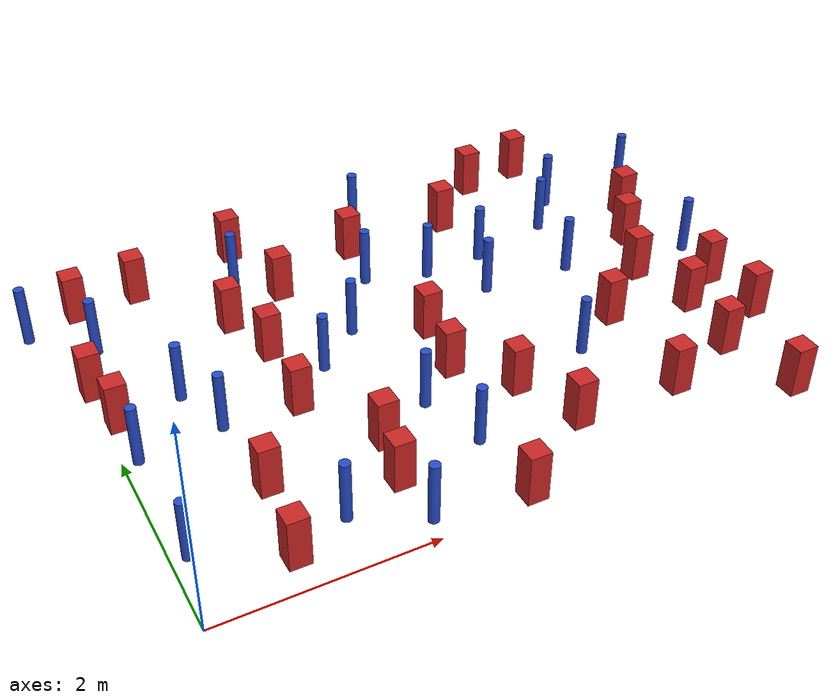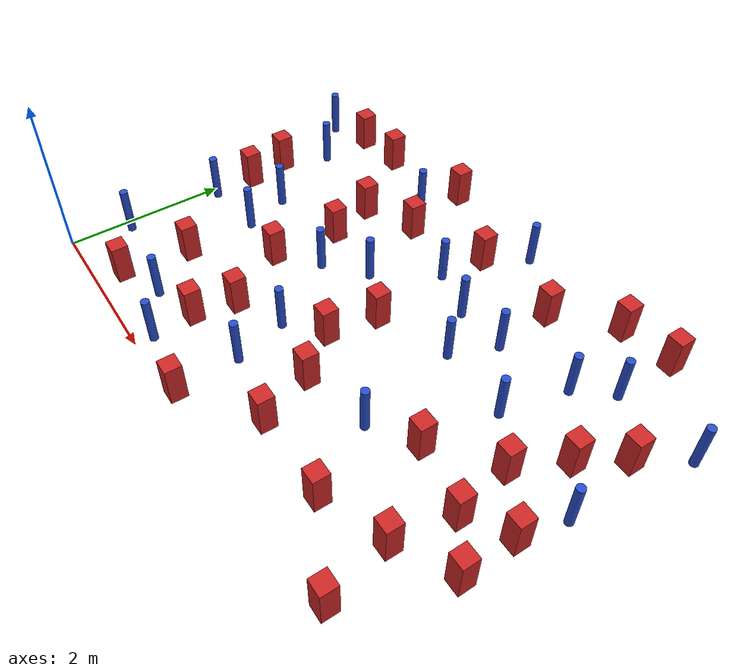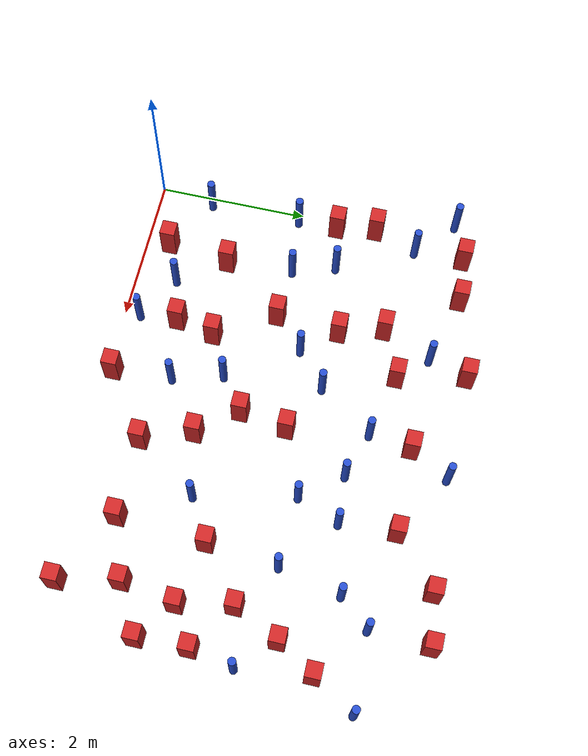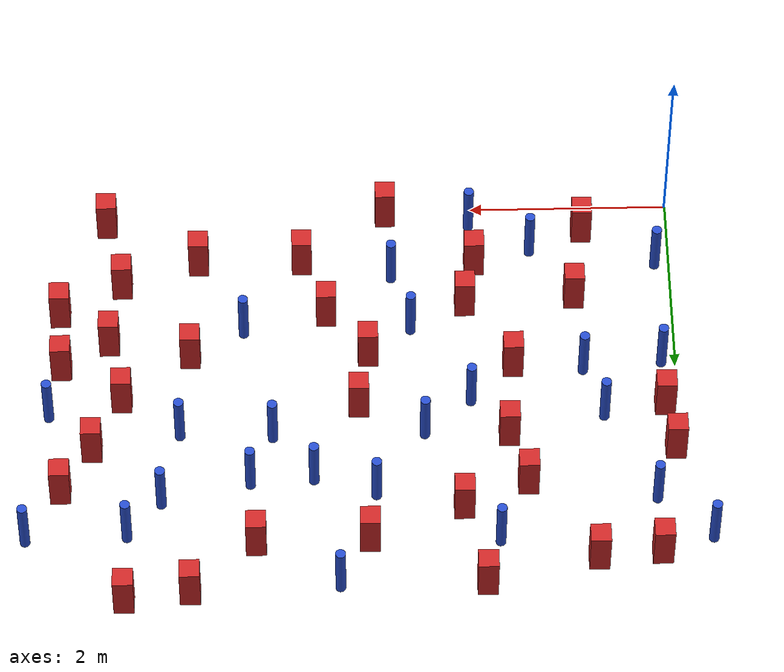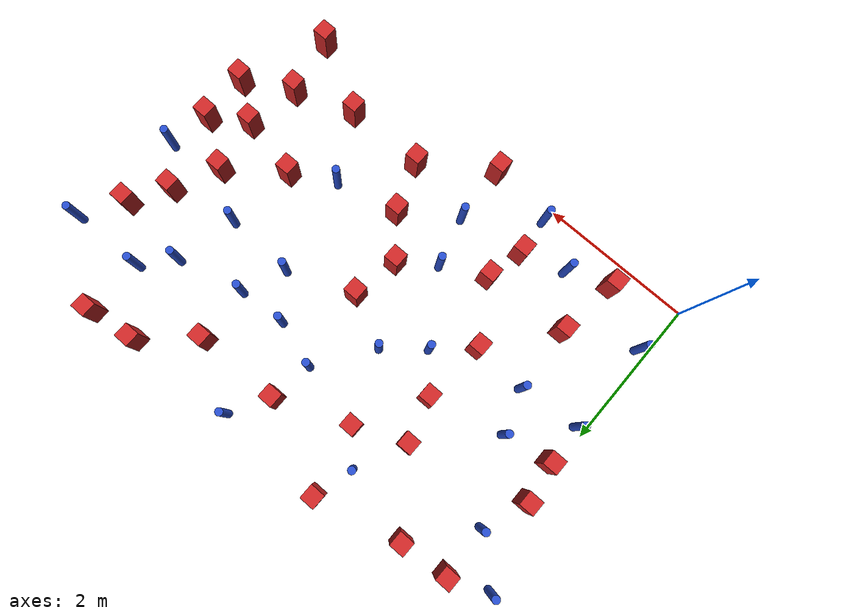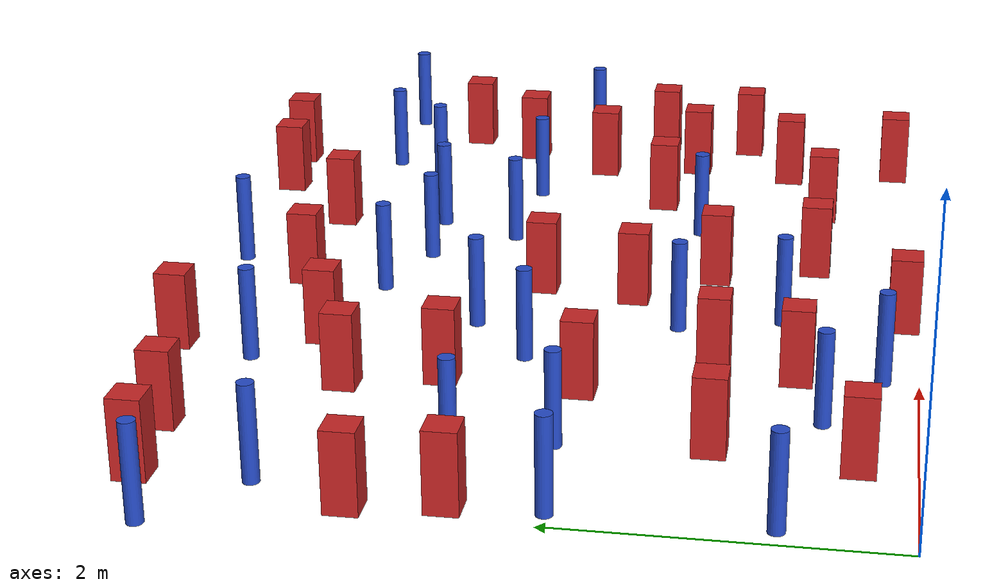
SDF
<sdf version="1.6">
 <model name="dense_79">
  <model name="square_post_obstacle6">
   <static>true</static>
   <pose>5.55854668269 0.973483236023 8.22691968438e-08 7.2212513382e-06 -7.54495500217e-07 2.29674213826e-05</pose>
   <link name="link">
    <pose>0 0 0.25 0 -0 0</pose>
    <inertial>
     <mass>100</mass>
     <inertia>
      <ixx>0.166667</ixx>
      <ixy>0</ixy>
      <ixz>0</ixz>
      <iyy>0.166667</iyy>
      <iyz>0</iyz>
      <izz>0.166667</izz>
     </inertia>
    </inertial>
    <collision name="collision"><geometry><box><size>.2 .2 .5</size></box></geometry></collision>
    <visual name="visual">
     <geometry><box><size>.2 .2 .5</size></box></geometry>
     <material>
      <script><name>Gazebo/Red</name><uri>file://media/materials/scripts/gazebo.material</uri></script>
     </material>
    </visual>
   </link>
  </model>
  <model name="square_post_obstacle9">
   <static>true</static>
   <pose>1.99024103625 0.733178355571 8.22691968438e-08 7.2212513382e-06 -7.54495500217e-07 2.29674213826e-05</pose>
   <link name="link">
    <pose>0 0 0.25 0 -0 0</pose>
    <inertial>
     <mass>100</mass>
     <inertia>
      <ixx>0.166667</ixx>
      <ixy>0</ixy>
      <ixz>0</ixz>
      <iyy>0.166667</iyy>
      <iyz>0</iyz>
      <izz>0.166667</izz>
     </inertia>
    </inertial>
    <collision name="collision"><geometry><box><size>.2 .2 .5</size></box></geometry></collision>
    <visual name="visual">
     <geometry><box><size>.2 .2 .5</size></box></geometry>
     <material>
      <script><name>Gazebo/Red</name><uri>file://media/materials/scripts/gazebo.material</uri></script>
     </material>
    </visual>
   </link>
  </model>
  <model name="pole_obstacle17">
   <static>true</static>
   <pose>0.143945520194 0.741125710017 2.88873142074e-08 -9.90536690033e-09 4.60219948985e-07 -1.20965994963e-07</pose>
   <link name="link">
    <pose>0 0 0.3 0 -0 0</pose>
    <inertial>
     <mass>1</mass>
     <inertia><ixx>0.145833</ixx><ixy>0</ixy><ixz>0</ixz><iyy>0.145833</iyy><iyz>0</iyz><izz>0.125</izz></inertia>
    </inertial>
    <collision name="collision">
     <geometry><cylinder><radius>0.05</radius><length>.6</length></cylinder></geometry>
    </collision>
    <visual name="visual">
     <geometry><cylinder><radius>0.05</radius><length>.6</length></cylinder></geometry>
     <material>
      <script><name>Gazebo/Blue</name><uri>file://media/materials/scripts/gazebo.material</uri></script>
     </material>
    </visual>
   </link>
  </model>
  <model name="square_post_obstacle15">
   <static>true</static>
   <pose>5.49864312743 4.75280284831 8.22691968438e-08 7.2212513382e-06 -7.54495500217e-07 2.29674213826e-05</pose>
   <link name="link">
    <pose>0 0 0.25 0 -0 0</pose>
    <inertial>
     <mass>100</mass>
     <inertia>
      <ixx>0.166667</ixx>
      <ixy>0</ixy>
      <ixz>0</ixz>
      <iyy>0.166667</iyy>
      <iyz>0</iyz>
      <izz>0.166667</izz>
     </inertia>
    </inertial>
    <collision name="collision"><geometry><box><size>.2 .2 .5</size></box></geometry></collision>
    <visual name="visual">
     <geometry><box><size>.2 .2 .5</size></box></geometry>
     <material>
      <script><name>Gazebo/Red</name><uri>file://media/materials/scripts/gazebo.material</uri></script>
     </material>
    </visual>
   </link>
  </model>
  <model name="pole_obstacle20">
   <static>true</static>
   <pose>0.139688920828 1.96752364969 2.88873142074e-08 -9.90536689557e-09 4.60219948996e-07 -1.20965994956e-07</pose>
   <link name="link">
    <pose>0 0 0.3 0 -0 0</pose>
    <inertial>
     <mass>1</mass>
     <inertia><ixx>0.145833</ixx><ixy>0</ixy><ixz>0</ixz><iyy>0.145833</iyy><iyz>0</iyz><izz>0.125</izz></inertia>
    </inertial>
    <collision name="collision">
     <geometry><cylinder><radius>0.05</radius><length>.6</length></cylinder></geometry>
    </collision>
    <visual name="visual">
     <geometry><cylinder><radius>0.05</radius><length>.6</length></cylinder></geometry>
     <material>
      <script><name>Gazebo/Blue</name><uri>file://media/materials/scripts/gazebo.material</uri></script>
     </material>
    </visual>
   </link>
  </model>
  <model name="pole_obstacle22">
   <static>true</static>
   <pose>2.06500898014 2.41130440198 2.88873142074e-08 -9.90536690232e-09 4.6021994898e-07 -1.20965994968e-07</pose>
   <link name="link">
    <pose>0 0 0.3 0 -0 0</pose>
    <inertial>
     <mass>1</mass>
     <inertia><ixx>0.145833</ixx><ixy>0</ixy><ixz>0</ixz><iyy>0.145833</iyy><iyz>0</iyz><izz>0.125</izz></inertia>
    </inertial>
    <collision name="collision">
     <geometry><cylinder><radius>0.05</radius><length>.6</length></cylinder></geometry>
    </collision>
    <visual name="visual">
     <geometry><cylinder><radius>0.05</radius><length>.6</length></cylinder></geometry>
     <material>
      <script><name>Gazebo/Blue</name><uri>file://media/materials/scripts/gazebo.material</uri></script>
     </material>
    </visual>
   </link>
  </model>
  <model name="pole_obstacle24">
   <static>true</static>
   <pose>1.82298354878 4.08808406498 2.88873142074e-08 -9.90536689852e-09 4.60219948989e-07 -1.2096599496e-07</pose>
   <link name="link">
    <pose>0 0 0.3 0 -0 0</pose>
    <inertial>
     <mass>1</mass>
     <inertia><ixx>0.145833</ixx><ixy>0</ixy><ixz>0</ixz><iyy>0.145833</iyy><iyz>0</iyz><izz>0.125</izz></inertia>
    </inertial>
    <collision name="collision">
     <geometry><cylinder><radius>0.05</radius><length>.6</length></cylinder></geometry>
    </collision>
    <visual name="visual">
     <geometry><cylinder><radius>0.05</radius><length>.6</length></cylinder></geometry>
     <material>
      <script><name>Gazebo/Blue</name><uri>file://media/materials/scripts/gazebo.material</uri></script>
     </material>
    </visual>
   </link>
  </model>
  <model name="square_post_obstacle21">
   <static>true</static>
   <pose>4.86648142705 1.85375109788 8.22691968438e-08 7.2212513382e-06 -7.54495500217e-07 2.29674213826e-05</pose>
   <link name="link">
    <pose>0 0 0.25 0 -0 0</pose>
    <inertial>
     <mass>100</mass>
     <inertia>
      <ixx>0.166667</ixx>
      <ixy>0</ixy>
      <ixz>0</ixz>
      <iyy>0.166667</iyy>
      <iyz>0</iyz>
      <izz>0.166667</izz>
     </inertia>
    </inertial>
    <collision name="collision"><geometry><box><size>.2 .2 .5</size></box></geometry></collision>
    <visual name="visual">
     <geometry><box><size>.2 .2 .5</size></box></geometry>
     <material>
      <script><name>Gazebo/Red</name><uri>file://media/materials/scripts/gazebo.material</uri></script>
     </material>
    </visual>
   </link>
  </model>
  <model name="pole_obstacle40">
   <static>true</static>
   <pose>-0.265510030972 4.08346401959 2.88873142074e-08 -9.90536689618e-09 4.60219948994e-07 -1.20965994956e-07</pose>
   <link name="link">
    <pose>0 0 0.3 0 -0 0</pose>
    <inertial>
     <mass>1</mass>
     <inertia><ixx>0.145833</ixx><ixy>0</ixy><ixz>0</ixz><iyy>0.145833</iyy><iyz>0</iyz><izz>0.125</izz></inertia>
    </inertial>
    <collision name="collision">
     <geometry><cylinder><radius>0.05</radius><length>.6</length></cylinder></geometry>
    </collision>
    <visual name="visual">
     <geometry><cylinder><radius>0.05</radius><length>.6</length></cylinder></geometry>
     <material>
      <script><name>Gazebo/Blue</name><uri>file://media/materials/scripts/gazebo.material</uri></script>
     </material>
    </visual>
   </link>
  </model>
  <model name="square_post_obstacle32">
   <static>true</static>
   <pose>4.78458137741 0.69521827296 8.22691968438e-08 7.2212513382e-06 -7.54495500217e-07 2.29674213826e-05</pose>
   <link name="link">
    <pose>0 0 0.25 0 -0 0</pose>
    <inertial>
     <mass>100</mass>
     <inertia>
      <ixx>0.166667</ixx>
      <ixy>0</ixy>
      <ixz>0</ixz>
      <iyy>0.166667</iyy>
      <iyz>0</iyz>
      <izz>0.166667</izz>
     </inertia>
    </inertial>
    <collision name="collision"><geometry><box><size>.2 .2 .5</size></box></geometry></collision>
    <visual name="visual">
     <geometry><box><size>.2 .2 .5</size></box></geometry>
     <material>
      <script><name>Gazebo/Red</name><uri>file://media/materials/scripts/gazebo.material</uri></script>
     </material>
    </visual>
   </link>
  </model>
  <model name="square_post_obstacle33">
   <static>true</static>
   <pose>0.0523208939293 3.03171113122 8.22691968438e-08 7.2212513382e-06 -7.54495500217e-07 2.29674213826e-05</pose>
   <link name="link">
    <pose>0 0 0.25 0 -0 0</pose>
    <inertial>
     <mass>100</mass>
     <inertia>
      <ixx>0.166667</ixx>
      <ixy>0</ixy>
      <ixz>0</ixz>
      <iyy>0.166667</iyy>
      <iyz>0</iyz>
      <izz>0.166667</izz>
     </inertia>
    </inertial>
    <collision name="collision"><geometry><box><size>.2 .2 .5</size></box></geometry></collision>
    <visual name="visual">
     <geometry><box><size>.2 .2 .5</size></box></geometry>
     <material>
      <script><name>Gazebo/Red</name><uri>file://media/materials/scripts/gazebo.material</uri></script>
     </material>
    </visual>
   </link>
  </model>
  <model name="pole_obstacle43">
   <static>true</static>
   <pose>4.33066802373 1.53504363595 2.88873142074e-08 -9.90536689445e-09 4.60219948999e-07 -1.20965994956e-07</pose>
   <link name="link">
    <pose>0 0 0.3 0 -0 0</pose>
    <inertial>
     <mass>1</mass>
     <inertia><ixx>0.145833</ixx><ixy>0</ixy><ixz>0</ixz><iyy>0.145833</iyy><iyz>0</iyz><izz>0.125</izz></inertia>
    </inertial>
    <collision name="collision">
     <geometry><cylinder><radius>0.05</radius><length>.6</length></cylinder></geometry>
    </collision>
    <visual name="visual">
     <geometry><cylinder><radius>0.05</radius><length>.6</length></cylinder></geometry>
     <material>
      <script><name>Gazebo/Blue</name><uri>file://media/materials/scripts/gazebo.material</uri></script>
     </material>
    </visual>
   </link>
  </model>
  <model name="pole_obstacle46">
   <static>true</static>
   <pose>4.96782453727 2.78345421204 2.88873142074e-08 -9.90536690245e-09 4.6021994898e-07 -1.20965994966e-07</pose>
   <link name="link">
    <pose>0 0 0.3 0 -0 0</pose>
    <inertial>
     <mass>1</mass>
     <inertia><ixx>0.145833</ixx><ixy>0</ixy><ixz>0</ixz><iyy>0.145833</iyy><iyz>0</iyz><izz>0.125</izz></inertia>
    </inertial>
    <collision name="collision">
     <geometry><cylinder><radius>0.05</radius><length>.6</length></cylinder></geometry>
    </collision>
    <visual name="visual">
     <geometry><cylinder><radius>0.05</radius><length>.6</length></cylinder></geometry>
     <material>
      <script><name>Gazebo/Blue</name><uri>file://media/materials/scripts/gazebo.material</uri></script>
     </material>
    </visual>
   </link>
  </model>
  <model name="pole_obstacle49">
   <static>true</static>
   <pose>2.02944779757 0.217782336808 2.88873142074e-08 -9.90536689604e-09 4.60219948995e-07 -1.20965994957e-07</pose>
   <link name="link">
    <pose>0 0 0.3 0 -0 0</pose>
    <inertial>
     <mass>1</mass>
     <inertia><ixx>0.145833</ixx><ixy>0</ixy><ixz>0</ixz><iyy>0.145833</iyy><iyz>0</iyz><izz>0.125</izz></inertia>
    </inertial>
    <collision name="collision">
     <geometry><cylinder><radius>0.05</radius><length>.6</length></cylinder></geometry>
    </collision>
    <visual name="visual">
     <geometry><cylinder><radius>0.05</radius><length>.6</length></cylinder></geometry>
     <material>
      <script><name>Gazebo/Blue</name><uri>file://media/materials/scripts/gazebo.material</uri></script>
     </material>
    </visual>
   </link>
  </model>
  <model name="pole_obstacle60">
   <static>true</static>
   <pose>4.04594409541 2.82158873041 2.88873142074e-08 -9.90536689988e-09 4.60219948986e-07 -1.20965994963e-07</pose>
   <link name="link">
    <pose>0 0 0.3 0 -0 0</pose>
    <inertial>
     <mass>1</mass>
     <inertia><ixx>0.145833</ixx><ixy>0</ixy><ixz>0</ixz><iyy>0.145833</iyy><iyz>0</iyz><izz>0.125</izz></inertia>
    </inertial>
    <collision name="collision">
     <geometry><cylinder><radius>0.05</radius><length>.6</length></cylinder></geometry>
    </collision>
    <visual name="visual">
     <geometry><cylinder><radius>0.05</radius><length>.6</length></cylinder></geometry>
     <material>
      <script><name>Gazebo/Blue</name><uri>file://media/materials/scripts/gazebo.material</uri></script>
     </material>
    </visual>
   </link>
  </model>
  <model name="pole_obstacle63">
   <static>true</static>
   <pose>0.929581483761 2.04777297678 2.88873142074e-08 -9.90536689995e-09 4.60219948985e-07 -1.20965994962e-07</pose>
   <link name="link">
    <pose>0 0 0.3 0 -0 0</pose>
    <inertial>
     <mass>1</mass>
     <inertia><ixx>0.145833</ixx><ixy>0</ixy><ixz>0</ixz><iyy>0.145833</iyy><iyz>0</iyz><izz>0.125</izz></inertia>
    </inertial>
    <collision name="collision">
     <geometry><cylinder><radius>0.05</radius><length>.6</length></cylinder></geometry>
    </collision>
    <visual name="visual">
     <geometry><cylinder><radius>0.05</radius><length>.6</length></cylinder></geometry>
     <material>
      <script><name>Gazebo/Blue</name><uri>file://media/materials/scripts/gazebo.material</uri></script>
     </material>
    </visual>
   </link>
  </model>
  <model name="pole_obstacle64">
   <static>true</static>
   <pose>4.26929395056 3.37781181993 2.88873142074e-08 -9.90536690245e-09 4.6021994898e-07 -1.20965994966e-07</pose>
   <link name="link">
    <pose>0 0 0.3 0 -0 0</pose>
    <inertial>
     <mass>1</mass>
     <inertia><ixx>0.145833</ixx><ixy>0</ixy><ixz>0</ixz><iyy>0.145833</iyy><iyz>0</iyz><izz>0.125</izz></inertia>
    </inertial>
    <collision name="collision">
     <geometry><cylinder><radius>0.05</radius><length>.6</length></cylinder></geometry>
    </collision>
    <visual name="visual">
     <geometry><cylinder><radius>0.05</radius><length>.6</length></cylinder></geometry>
     <material>
      <script><name>Gazebo/Blue</name><uri>file://media/materials/scripts/gazebo.material</uri></script>
     </material>
    </visual>
   </link>
  </model>
  <model name="square_post_obstacle66">
   <static>true</static>
   <pose>5.83641155961 2.9767723588 8.22691968438e-08 7.2212513382e-06 -7.54495500217e-07 2.29674213826e-05</pose>
   <link name="link">
    <pose>0 0 0.25 0 -0 0</pose>
    <inertial>
     <mass>100</mass>
     <inertia>
      <ixx>0.166667</ixx>
      <ixy>0</ixy>
      <ixz>0</ixz>
      <iyy>0.166667</iyy>
      <iyz>0</iyz>
      <izz>0.166667</izz>
     </inertia>
    </inertial>
    <collision name="collision"><geometry><box><size>.2 .2 .5</size></box></geometry></collision>
    <visual name="visual">
     <geometry><box><size>.2 .2 .5</size></box></geometry>
     <material>
      <script><name>Gazebo/Red</name><uri>file://media/materials/scripts/gazebo.material</uri></script>
     </material>
    </visual>
   </link>
  </model>
  <model name="square_post_obstacle76">
   <static>true</static>
   <pose>6.13826692928 3.46695634229 8.22691968438e-08 7.2212513382e-06 -7.54495500217e-07 2.29674213826e-05</pose>
   <link name="link">
    <pose>0 0 0.25 0 -0 0</pose>
    <inertial>
     <mass>100</mass>
     <inertia>
      <ixx>0.166667</ixx>
      <ixy>0</ixy>
      <ixz>0</ixz>
      <iyy>0.166667</iyy>
      <iyz>0</iyz>
      <izz>0.166667</izz>
     </inertia>
    </inertial>
    <collision name="collision"><geometry><box><size>.2 .2 .5</size></box></geometry></collision>
    <visual name="visual">
     <geometry><box><size>.2 .2 .5</size></box></geometry>
     <material>
      <script><name>Gazebo/Red</name><uri>file://media/materials/scripts/gazebo.material</uri></script>
     </material>
    </visual>
   </link>
  </model>
  <model name="square_post_obstacle79">
   <static>true</static>
   <pose>3.08541167611 1.85532679713 8.22691968438e-08 7.2212513382e-06 -7.54495500217e-07 2.29674213826e-05</pose>
   <link name="link">
    <pose>0 0 0.25 0 -0 0</pose>
    <inertial>
     <mass>100</mass>
     <inertia>
      <ixx>0.166667</ixx>
      <ixy>0</ixy>
      <ixz>0</ixz>
      <iyy>0.166667</iyy>
      <iyz>0</iyz>
      <izz>0.166667</izz>
     </inertia>
    </inertial>
    <collision name="collision"><geometry><box><size>.2 .2 .5</size></box></geometry></collision>
    <visual name="visual">
     <geometry><box><size>.2 .2 .5</size></box></geometry>
     <material>
      <script><name>Gazebo/Red</name><uri>file://media/materials/scripts/gazebo.material</uri></script>
     </material>
    </visual>
   </link>
  </model>
  <model name="square_post_obstacle80">
   <static>true</static>
   <pose>5.54754099378 2.38069353637 8.22691968438e-08 7.2212513382e-06 -7.54495500217e-07 2.29674213826e-05</pose>
   <link name="link">
    <pose>0 0 0.25 0 -0 0</pose>
    <inertial>
     <mass>100</mass>
     <inertia>
      <ixx>0.166667</ixx>
      <ixy>0</ixy>
      <ixz>0</ixz>
      <iyy>0.166667</iyy>
      <iyz>0</iyz>
      <izz>0.166667</izz>
     </inertia>
    </inertial>
    <collision name="collision"><geometry><box><size>.2 .2 .5</size></box></geometry></collision>
    <visual name="visual">
     <geometry><box><size>.2 .2 .5</size></box></geometry>
     <material>
      <script><name>Gazebo/Red</name><uri>file://media/materials/scripts/gazebo.material</uri></script>
     </material>
    </visual>
   </link>
  </model>
  <model name="square_post_obstacle87">
   <static>true</static>
   <pose>3.18703764535 2.47809150173 8.22691968438e-08 7.2212513382e-06 -7.54495500217e-07 2.29674213826e-05</pose>
   <link name="link">
    <pose>0 0 0.25 0 -0 0</pose>
    <inertial>
     <mass>100</mass>
     <inertia>
      <ixx>0.166667</ixx>
      <ixy>0</ixy>
      <ixz>0</ixz>
      <iyy>0.166667</iyy>
      <iyz>0</iyz>
      <izz>0.166667</izz>
     </inertia>
    </inertial>
    <collision name="collision"><geometry><box><size>.2 .2 .5</size></box></geometry></collision>
    <visual name="visual">
     <geometry><box><size>.2 .2 .5</size></box></geometry>
     <material>
      <script><name>Gazebo/Red</name><uri>file://media/materials/scripts/gazebo.material</uri></script>
     </material>
    </visual>
   </link>
  </model>
  <model name="square_post_obstacle92">
   <static>true</static>
   <pose>6.17946330299 1.31942860244 8.22691968438e-08 7.2212513382e-06 -7.54495500217e-07 2.29674213826e-05</pose>
   <link name="link">
    <pose>0 0 0.25 0 -0 0</pose>
    <inertial>
     <mass>100</mass>
     <inertia>
      <ixx>0.166667</ixx>
      <ixy>0</ixy>
      <ixz>0</ixz>
      <iyy>0.166667</iyy>
      <iyz>0</iyz>
      <izz>0.166667</izz>
     </inertia>
    </inertial>
    <collision name="collision"><geometry><box><size>.2 .2 .5</size></box></geometry></collision>
    <visual name="visual">
     <geometry><box><size>.2 .2 .5</size></box></geometry>
     <material>
      <script><name>Gazebo/Red</name><uri>file://media/materials/scripts/gazebo.material</uri></script>
     </material>
    </visual>
   </link>
  </model>
  <model name="square_post_obstacle93">
   <static>true</static>
   <pose>4.85743162066 4.66661174489 8.22691968438e-08 7.2212513382e-06 -7.54495500217e-07 2.29674213826e-05</pose>
   <link name="link">
    <pose>0 0 0.25 0 -0 0</pose>
    <inertial>
     <mass>100</mass>
     <inertia>
      <ixx>0.166667</ixx>
      <ixy>0</ixy>
      <ixz>0</ixz>
      <iyy>0.166667</iyy>
      <iyz>0</iyz>
      <izz>0.166667</izz>
     </inertia>
    </inertial>
    <collision name="collision"><geometry><box><size>.2 .2 .5</size></box></geometry></collision>
    <visual name="visual">
     <geometry><box><size>.2 .2 .5</size></box></geometry>
     <material>
      <script><name>Gazebo/Red</name><uri>file://media/materials/scripts/gazebo.material</uri></script>
     </material>
    </visual>
   </link>
  </model>
  <model name="pole_obstacle107">
   <static>true</static>
   <pose>3.02768697194 3.52371098499 2.88873142074e-08 -9.90536690232e-09 4.6021994898e-07 -1.20965994968e-07</pose>
   <link name="link">
    <pose>0 0 0.3 0 -0 0</pose>
    <inertial>
     <mass>1</mass>
     <inertia><ixx>0.145833</ixx><ixy>0</ixy><ixz>0</ixz><iyy>0.145833</iyy><iyz>0</iyz><izz>0.125</izz></inertia>
    </inertial>
    <collision name="collision">
     <geometry><cylinder><radius>0.05</radius><length>.6</length></cylinder></geometry>
    </collision>
    <visual name="visual">
     <geometry><cylinder><radius>0.05</radius><length>.6</length></cylinder></geometry>
     <material>
      <script><name>Gazebo/Blue</name><uri>file://media/materials/scripts/gazebo.material</uri></script>
     </material>
    </visual>
   </link>
  </model>
  <model name="square_post_obstacle110">
   <static>true</static>
   <pose>5.72329694684 0.19433244433 8.22691968438e-08 7.2212513382e-06 -7.54495500217e-07 2.29674213826e-05</pose>
   <link name="link">
    <pose>0 0 0.25 0 -0 0</pose>
    <inertial>
     <mass>100</mass>
     <inertia>
      <ixx>0.166667</ixx>
      <ixy>0</ixy>
      <ixz>0</ixz>
      <iyy>0.166667</iyy>
      <iyz>0</iyz>
      <izz>0.166667</izz>
     </inertia>
    </inertial>
    <collision name="collision"><geometry><box><size>.2 .2 .5</size></box></geometry></collision>
    <visual name="visual">
     <geometry><box><size>.2 .2 .5</size></box></geometry>
     <material>
      <script><name>Gazebo/Red</name><uri>file://media/materials/scripts/gazebo.material</uri></script>
     </material>
    </visual>
   </link>
  </model>
  <model name="square_post_obstacle113">
   <static>true</static>
   <pose>1.52959961261 3.43104803184 8.22691968438e-08 7.2212513382e-06 -7.54495500217e-07 2.29674213826e-05</pose>
   <link name="link">
    <pose>0 0 0.25 0 -0 0</pose>
    <inertial>
     <mass>100</mass>
     <inertia>
      <ixx>0.166667</ixx>
      <ixy>0</ixy>
      <ixz>0</ixz>
      <iyy>0.166667</iyy>
      <iyz>0</iyz>
      <izz>0.166667</izz>
     </inertia>
    </inertial>
    <collision name="collision"><geometry><box><size>.2 .2 .5</size></box></geometry></collision>
    <visual name="visual">
     <geometry><box><size>.2 .2 .5</size></box></geometry>
     <material>
      <script><name>Gazebo/Red</name><uri>file://media/materials/scripts/gazebo.material</uri></script>
     </material>
    </visual>
   </link>
  </model>
  <model name="square_post_obstacle116">
   <static>true</static>
   <pose>4.21566400997 4.1073040141 8.22691968438e-08 7.2212513382e-06 -7.54495500217e-07 2.29674213826e-05</pose>
   <link name="link">
    <pose>0 0 0.25 0 -0 0</pose>
    <inertial>
     <mass>100</mass>
     <inertia>
      <ixx>0.166667</ixx>
      <ixy>0</ixy>
      <ixz>0</ixz>
      <iyy>0.166667</iyy>
      <iyz>0</iyz>
      <izz>0.166667</izz>
     </inertia>
    </inertial>
    <collision name="collision"><geometry><box><size>.2 .2 .5</size></box></geometry></collision>
    <visual name="visual">
     <geometry><box><size>.2 .2 .5</size></box></geometry>
     <material>
      <script><name>Gazebo/Red</name><uri>file://media/materials/scripts/gazebo.material</uri></script>
     </material>
    </visual>
   </link>
  </model>
  <model name="square_post_obstacle117">
   <static>true</static>
   <pose>3.73781608491 0.698578922526 8.22691968438e-08 7.2212513382e-06 -7.54495500217e-07 2.29674213826e-05</pose>
   <link name="link">
    <pose>0 0 0.25 0 -0 0</pose>
    <inertial>
     <mass>100</mass>
     <inertia>
      <ixx>0.166667</ixx>
      <ixy>0</ixy>
      <ixz>0</ixz>
      <iyy>0.166667</iyy>
      <iyz>0</iyz>
      <izz>0.166667</izz>
     </inertia>
    </inertial>
    <collision name="collision"><geometry><box><size>.2 .2 .5</size></box></geometry></collision>
    <visual name="visual">
     <geometry><box><size>.2 .2 .5</size></box></geometry>
     <material>
      <script><name>Gazebo/Red</name><uri>file://media/materials/scripts/gazebo.material</uri></script>
     </material>
    </visual>
   </link>
  </model>
  <model name="pole_obstacle120">
   <static>true</static>
   <pose>6.27464553563 2.53815864231 2.88873142074e-08 -9.90536690245e-09 4.6021994898e-07 -1.20965994966e-07</pose>
   <link name="link">
    <pose>0 0 0.3 0 -0 0</pose>
    <inertial>
     <mass>1</mass>
     <inertia><ixx>0.145833</ixx><ixy>0</ixy><ixz>0</ixz><iyy>0.145833</iyy><iyz>0</iyz><izz>0.125</izz></inertia>
    </inertial>
    <collision name="collision">
     <geometry><cylinder><radius>0.05</radius><length>.6</length></cylinder></geometry>
    </collision>
    <visual name="visual">
     <geometry><cylinder><radius>0.05</radius><length>.6</length></cylinder></geometry>
     <material>
      <script><name>Gazebo/Blue</name><uri>file://media/materials/scripts/gazebo.material</uri></script>
     </material>
    </visual>
   </link>
  </model>
  <model name="pole_obstacle122">
   <static>true</static>
   <pose>2.83370796195 0.867647053746 2.88873142074e-08 -9.90536689285e-09 4.60219949002e-07 -1.20965994953e-07</pose>
   <link name="link">
    <pose>0 0 0.3 0 -0 0</pose>
    <inertial>
     <mass>1</mass>
     <inertia><ixx>0.145833</ixx><ixy>0</ixy><ixz>0</ixz><iyy>0.145833</iyy><iyz>0</iyz><izz>0.125</izz></inertia>
    </inertial>
    <collision name="collision">
     <geometry><cylinder><radius>0.05</radius><length>.6</length></cylinder></geometry>
    </collision>
    <visual name="visual">
     <geometry><cylinder><radius>0.05</radius><length>.6</length></cylinder></geometry>
     <material>
      <script><name>Gazebo/Blue</name><uri>file://media/materials/scripts/gazebo.material</uri></script>
     </material>
    </visual>
   </link>
  </model>
  <model name="square_post_obstacle131">
   <static>true</static>
   <pose>1.63463303445 2.0071123161 8.22691968438e-08 7.2212513382e-06 -7.54495500217e-07 2.29674213826e-05</pose>
   <link name="link">
    <pose>0 0 0.25 0 -0 0</pose>
    <inertial>
     <mass>100</mass>
     <inertia>
      <ixx>0.166667</ixx>
      <ixy>0</ixy>
      <ixz>0</ixz>
      <iyy>0.166667</iyy>
      <iyz>0</iyz>
      <izz>0.166667</izz>
     </inertia>
    </inertial>
    <collision name="collision"><geometry><box><size>.2 .2 .5</size></box></geometry></collision>
    <visual name="visual">
     <geometry><box><size>.2 .2 .5</size></box></geometry>
     <material>
      <script><name>Gazebo/Red</name><uri>file://media/materials/scripts/gazebo.material</uri></script>
     </material>
    </visual>
   </link>
  </model>
  <model name="pole_obstacle134">
   <static>true</static>
   <pose>5.48053169003 3.98501624725 2.88873142074e-08 -9.9053669014e-09 4.60219948982e-07 -1.20965994965e-07</pose>
   <link name="link">
    <pose>0 0 0.3 0 -0 0</pose>
    <inertial>
     <mass>1</mass>
     <inertia><ixx>0.145833</ixx><ixy>0</ixy><ixz>0</ixz><iyy>0.145833</iyy><iyz>0</iyz><izz>0.125</izz></inertia>
    </inertial>
    <collision name="collision">
     <geometry><cylinder><radius>0.05</radius><length>.6</length></cylinder></geometry>
    </collision>
    <visual name="visual">
     <geometry><cylinder><radius>0.05</radius><length>.6</length></cylinder></geometry>
     <material>
      <script><name>Gazebo/Blue</name><uri>file://media/materials/scripts/gazebo.material</uri></script>
     </material>
    </visual>
   </link>
  </model>
  <model name="pole_obstacle135">
   <static>true</static>
   <pose>0.740589111508 2.61106218832 2.88873142074e-08 -9.90536689636e-09 4.60219948994e-07 -1.20965994958e-07</pose>
   <link name="link">
    <pose>0 0 0.3 0 -0 0</pose>
    <inertial>
     <mass>1</mass>
     <inertia><ixx>0.145833</ixx><ixy>0</ixy><ixz>0</ixz><iyy>0.145833</iyy><iyz>0</iyz><izz>0.125</izz></inertia>
    </inertial>
    <collision name="collision">
     <geometry><cylinder><radius>0.05</radius><length>.6</length></cylinder></geometry>
    </collision>
    <visual name="visual">
     <geometry><cylinder><radius>0.05</radius><length>.6</length></cylinder></geometry>
     <material>
      <script><name>Gazebo/Blue</name><uri>file://media/materials/scripts/gazebo.material</uri></script>
     </material>
    </visual>
   </link>
  </model>
  <model name="square_post_obstacle135">
   <static>true</static>
   <pose>0.990789645759 1.16828792939 8.22691968438e-08 7.2212513382e-06 -7.54495500217e-07 2.29674213826e-05</pose>
   <link name="link">
    <pose>0 0 0.25 0 -0 0</pose>
    <inertial>
     <mass>100</mass>
     <inertia>
      <ixx>0.166667</ixx>
      <ixy>0</ixy>
      <ixz>0</ixz>
      <iyy>0.166667</iyy>
      <iyz>0</iyz>
      <izz>0.166667</izz>
     </inertia>
    </inertial>
    <collision name="collision"><geometry><box><size>.2 .2 .5</size></box></geometry></collision>
    <visual name="visual">
     <geometry><box><size>.2 .2 .5</size></box></geometry>
     <material>
      <script><name>Gazebo/Red</name><uri>file://media/materials/scripts/gazebo.material</uri></script>
     </material>
    </visual>
   </link>
  </model>
  <model name="square_post_obstacle144">
   <static>true</static>
   <pose>5.67989755165 1.68259536944 8.22691968438e-08 7.2212513382e-06 -7.54495500217e-07 2.29674213826e-05</pose>
   <link name="link">
    <pose>0 0 0.25 0 -0 0</pose>
    <inertial>
     <mass>100</mass>
     <inertia>
      <ixx>0.166667</ixx>
      <ixy>0</ixy>
      <ixz>0</ixz>
      <iyy>0.166667</iyy>
      <iyz>0</iyz>
      <izz>0.166667</izz>
     </inertia>
    </inertial>
    <collision name="collision"><geometry><box><size>.2 .2 .5</size></box></geometry></collision>
    <visual name="visual">
     <geometry><box><size>.2 .2 .5</size></box></geometry>
     <material>
      <script><name>Gazebo/Red</name><uri>file://media/materials/scripts/gazebo.material</uri></script>
     </material>
    </visual>
   </link>
  </model>
  <model name="square_post_obstacle145">
   <static>true</static>
   <pose>0.882015064534 0.333374403068 8.22691968438e-08 7.22125133819e-06 -7.54495500217e-07 2.29674213826e-05</pose>
   <link name="link">
    <pose>0 0 0.25 0 -0 0</pose>
    <inertial>
     <mass>100</mass>
     <inertia>
      <ixx>0.166667</ixx>
      <ixy>0</ixy>
      <ixz>0</ixz>
      <iyy>0.166667</iyy>
      <iyz>0</iyz>
      <izz>0.166667</izz>
     </inertia>
    </inertial>
    <collision name="collision"><geometry><box><size>.2 .2 .5</size></box></geometry></collision>
    <visual name="visual">
     <geometry><box><size>.2 .2 .5</size></box></geometry>
     <material>
      <script><name>Gazebo/Red</name><uri>file://media/materials/scripts/gazebo.material</uri></script>
     </material>
    </visual>
   </link>
  </model>
  <model name="square_post_obstacle149">
   <static>true</static>
   <pose>1.69820858407 2.85003193875 8.22691968438e-08 7.2212513382e-06 -7.54495500217e-07 2.29674213826e-05</pose>
   <link name="link">
    <pose>0 0 0.25 0 -0 0</pose>
    <inertial>
     <mass>100</mass>
     <inertia>
      <ixx>0.166667</ixx>
      <ixy>0</ixy>
      <ixz>0</ixz>
      <iyy>0.166667</iyy>
      <iyz>0</iyz>
      <izz>0.166667</izz>
     </inertia>
    </inertial>
    <collision name="collision"><geometry><box><size>.2 .2 .5</size></box></geometry></collision>
    <visual name="visual">
     <geometry><box><size>.2 .2 .5</size></box></geometry>
     <material>
      <script><name>Gazebo/Red</name><uri>file://media/materials/scripts/gazebo.material</uri></script>
     </material>
    </visual>
   </link>
  </model>
  <model name="square_post_obstacle150">
   <static>true</static>
   <pose>1.96776913418 4.60192768696 8.22691968438e-08 7.2212513382e-06 -7.54495500217e-07 2.29674213826e-05</pose>
   <link name="link">
    <pose>0 0 0.25 0 -0 0</pose>
    <inertial>
     <mass>100</mass>
     <inertia>
      <ixx>0.166667</ixx>
      <ixy>0</ixy>
      <ixz>0</ixz>
      <iyy>0.166667</iyy>
      <iyz>0</iyz>
      <izz>0.166667</izz>
     </inertia>
    </inertial>
    <collision name="collision"><geometry><box><size>.2 .2 .5</size></box></geometry></collision>
    <visual name="visual">
     <geometry><box><size>.2 .2 .5</size></box></geometry>
     <material>
      <script><name>Gazebo/Red</name><uri>file://media/materials/scripts/gazebo.material</uri></script>
     </material>
    </visual>
   </link>
  </model>
  <model name="pole_obstacle164">
   <static>true</static>
   <pose>2.5342944423 2.8018750995 2.88873142074e-08 -9.90536690232e-09 4.6021994898e-07 -1.20965994968e-07</pose>
   <link name="link">
    <pose>0 0 0.3 0 -0 0</pose>
    <inertial>
     <mass>1</mass>
     <inertia><ixx>0.145833</ixx><ixy>0</ixy><ixz>0</ixz><iyy>0.145833</iyy><iyz>0</iyz><izz>0.125</izz></inertia>
    </inertial>
    <collision name="collision">
     <geometry><cylinder><radius>0.05</radius><length>.6</length></cylinder></geometry>
    </collision>
    <visual name="visual">
     <geometry><cylinder><radius>0.05</radius><length>.6</length></cylinder></geometry>
     <material>
      <script><name>Gazebo/Blue</name><uri>file://media/materials/scripts/gazebo.material</uri></script>
     </material>
    </visual>
   </link>
  </model>
  <model name="pole_obstacle168">
   <static>true</static>
   <pose>3.64106215783 3.33571791473 2.88873142074e-08 -9.90536690232e-09 4.6021994898e-07 -1.20965994968e-07</pose>
   <link name="link">
    <pose>0 0 0.3 0 -0 0</pose>
    <inertial>
     <mass>1</mass>
     <inertia><ixx>0.145833</ixx><ixy>0</ixy><ixz>0</ixz><iyy>0.145833</iyy><iyz>0</iyz><izz>0.125</izz></inertia>
    </inertial>
    <collision name="collision">
     <geometry><cylinder><radius>0.05</radius><length>.6</length></cylinder></geometry>
    </collision>
    <visual name="visual">
     <geometry><cylinder><radius>0.05</radius><length>.6</length></cylinder></geometry>
     <material>
      <script><name>Gazebo/Blue</name><uri>file://media/materials/scripts/gazebo.material</uri></script>
     </material>
    </visual>
   </link>
  </model>
  <model name="square_post_obstacle167">
   <static>true</static>
   <pose>3.49828076364 1.35198143566 8.22691968438e-08 7.2212513382e-06 -7.54495500217e-07 2.29674213826e-05</pose>
   <link name="link">
    <pose>0 0 0.25 0 -0 0</pose>
    <inertial>
     <mass>100</mass>
     <inertia>
      <ixx>0.166667</ixx>
      <ixy>0</ixy>
      <ixz>0</ixz>
      <iyy>0.166667</iyy>
      <iyz>0</iyz>
      <izz>0.166667</izz>
     </inertia>
    </inertial>
    <collision name="collision"><geometry><box><size>.2 .2 .5</size></box></geometry></collision>
    <visual name="visual">
     <geometry><box><size>.2 .2 .5</size></box></geometry>
     <material>
      <script><name>Gazebo/Red</name><uri>file://media/materials/scripts/gazebo.material</uri></script>
     </material>
    </visual>
   </link>
  </model>
  <model name="square_post_obstacle170">
   <static>true</static>
   <pose>2.09738252955 1.24396604945 8.22691968438e-08 7.2212513382e-06 -7.54495500217e-07 2.29674213826e-05</pose>
   <link name="link">
    <pose>0 0 0.25 0 -0 0</pose>
    <inertial>
     <mass>100</mass>
     <inertia>
      <ixx>0.166667</ixx>
      <ixy>0</ixy>
      <ixz>0</ixz>
      <iyy>0.166667</iyy>
      <iyz>0</iyz>
      <izz>0.166667</izz>
     </inertia>
    </inertial>
    <collision name="collision"><geometry><box><size>.2 .2 .5</size></box></geometry></collision>
    <visual name="visual">
     <geometry><box><size>.2 .2 .5</size></box></geometry>
     <material>
      <script><name>Gazebo/Red</name><uri>file://media/materials/scripts/gazebo.material</uri></script>
     </material>
    </visual>
   </link>
  </model>
  <model name="pole_obstacle172">
   <static>true</static>
   <pose>0.261448724849 3.61112018632 2.88873142074e-08 -9.9053668968e-09 4.60219948993e-07 -1.20965994959e-07</pose>
   <link name="link">
    <pose>0 0 0.3 0 -0 0</pose>
    <inertial>
     <mass>1</mass>
     <inertia><ixx>0.145833</ixx><ixy>0</ixy><ixz>0</ixz><iyy>0.145833</iyy><iyz>0</iyz><izz>0.125</izz></inertia>
    </inertial>
    <collision name="collision">
     <geometry><cylinder><radius>0.05</radius><length>.6</length></cylinder></geometry>
    </collision>
    <visual name="visual">
     <geometry><cylinder><radius>0.05</radius><length>.6</length></cylinder></geometry>
     <material>
      <script><name>Gazebo/Blue</name><uri>file://media/materials/scripts/gazebo.material</uri></script>
     </material>
    </visual>
   </link>
  </model>
  <model name="pole_obstacle173">
   <static>true</static>
   <pose>3.39704625506 4.59385779269 2.88873142074e-08 -9.90536689859e-09 4.60219948989e-07 -1.20965994961e-07</pose>
   <link name="link">
    <pose>0 0 0.3 0 -0 0</pose>
    <inertial>
     <mass>1</mass>
     <inertia><ixx>0.145833</ixx><ixy>0</ixy><ixz>0</ixz><iyy>0.145833</iyy><iyz>0</iyz><izz>0.125</izz></inertia>
    </inertial>
    <collision name="collision">
     <geometry><cylinder><radius>0.05</radius><length>.6</length></cylinder></geometry>
    </collision>
    <visual name="visual">
     <geometry><cylinder><radius>0.05</radius><length>.6</length></cylinder></geometry>
     <material>
      <script><name>Gazebo/Blue</name><uri>file://media/materials/scripts/gazebo.material</uri></script>
     </material>
    </visual>
   </link>
  </model>
  <model name="pole_obstacle179">
   <static>true</static>
   <pose>6.47791747611 4.01715542648 2.88873142074e-08 -9.90536690763e-09 4.60219948967e-07 -1.20965994975e-07</pose>
   <link name="link">
    <pose>0 0 0.3 0 -0 0</pose>
    <inertial>
     <mass>1</mass>
     <inertia><ixx>0.145833</ixx><ixy>0</ixy><ixz>0</ixz><iyy>0.145833</iyy><iyz>0</iyz><izz>0.125</izz></inertia>
    </inertial>
    <collision name="collision">
     <geometry><cylinder><radius>0.05</radius><length>.6</length></cylinder></geometry>
    </collision>
    <visual name="visual">
     <geometry><cylinder><radius>0.05</radius><length>.6</length></cylinder></geometry>
     <material>
      <script><name>Gazebo/Blue</name><uri>file://media/materials/scripts/gazebo.material</uri></script>
     </material>
    </visual>
   </link>
  </model>
  <model name="square_post_obstacle181">
   <static>true</static>
   <pose>0.132081567931 2.50478969282 8.22691968438e-08 7.2212513382e-06 -7.54495500217e-07 2.29674213826e-05</pose>
   <link name="link">
    <pose>0 0 0.25 0 -0 0</pose>
    <inertial>
     <mass>100</mass>
     <inertia>
      <ixx>0.166667</ixx>
      <ixy>0</ixy>
      <ixz>0</ixz>
      <iyy>0.166667</iyy>
      <iyz>0</iyz>
      <izz>0.166667</izz>
     </inertia>
    </inertial>
    <collision name="collision"><geometry><box><size>.2 .2 .5</size></box></geometry></collision>
    <visual name="visual">
     <geometry><box><size>.2 .2 .5</size></box></geometry>
     <material>
      <script><name>Gazebo/Red</name><uri>file://media/materials/scripts/gazebo.material</uri></script>
     </material>
    </visual>
   </link>
  </model>
  <model name="square_post_obstacle193">
   <static>true</static>
   <pose>3.1002479262 4.079292953 8.22691968438e-08 7.22125133819e-06 -7.54495500217e-07 2.29674213826e-05</pose>
   <link name="link">
    <pose>0 0 0.25 0 -0 0</pose>
    <inertial>
     <mass>100</mass>
     <inertia>
      <ixx>0.166667</ixx>
      <ixy>0</ixy>
      <ixz>0</ixz>
      <iyy>0.166667</iyy>
      <iyz>0</iyz>
      <izz>0.166667</izz>
     </inertia>
    </inertial>
    <collision name="collision"><geometry><box><size>.2 .2 .5</size></box></geometry></collision>
    <visual name="visual">
     <geometry><box><size>.2 .2 .5</size></box></geometry>
     <material>
      <script><name>Gazebo/Red</name><uri>file://media/materials/scripts/gazebo.material</uri></script>
     </material>
    </visual>
   </link>
  </model>
  <model name="square_post_obstacle199">
   <static>true</static>
   <pose>2.88166161774 0.0981266510979 8.22691968438e-08 7.2212513382e-06 -7.54495500217e-07 2.29674213826e-05</pose>
   <link name="link">
    <pose>0 0 0.25 0 -0 0</pose>
    <inertial>
     <mass>100</mass>
     <inertia>
      <ixx>0.166667</ixx>
      <ixy>0</ixy>
      <ixz>0</ixz>
      <iyy>0.166667</iyy>
      <iyz>0</iyz>
      <izz>0.166667</izz>
     </inertia>
    </inertial>
    <collision name="collision"><geometry><box><size>.2 .2 .5</size></box></geometry></collision>
    <visual name="visual">
     <geometry><box><size>.2 .2 .5</size></box></geometry>
     <material>
      <script><name>Gazebo/Red</name><uri>file://media/materials/scripts/gazebo.material</uri></script>
     </material>
    </visual>
   </link>
  </model>
  <model name="square_post_obstacle200">
   <static>true</static>
   <pose>2.16918164164 3.71035061086 8.22691968438e-08 7.2212513382e-06 -7.54495500217e-07 2.29674213826e-05</pose>
   <link name="link">
    <pose>0 0 0.25 0 -0 0</pose>
    <inertial>
     <mass>100</mass>
     <inertia>
      <ixx>0.166667</ixx>
      <ixy>0</ixy>
      <ixz>0</ixz>
      <iyy>0.166667</iyy>
      <iyz>0</iyz>
      <izz>0.166667</izz>
     </inertia>
    </inertial>
    <collision name="collision"><geometry><box><size>.2 .2 .5</size></box></geometry></collision>
    <visual name="visual">
     <geometry><box><size>.2 .2 .5</size></box></geometry>
     <material>
      <script><name>Gazebo/Red</name><uri>file://media/materials/scripts/gazebo.material</uri></script>
     </material>
    </visual>
   </link>
  </model>
  <model name="pole_obstacle192">
   <static>true</static>
   <pose>2.64936769515 1.51971789326 2.88873142074e-08 -9.90536689395e-09 4.60219949e-07 -1.20965994953e-07</pose>
   <link name="link">
    <pose>0 0 0.3 0 -0 0</pose>
    <inertial>
     <mass>1</mass>
     <inertia><ixx>0.145833</ixx><ixy>0</ixy><ixz>0</ixz><iyy>0.145833</iyy><iyz>0</iyz><izz>0.125</izz></inertia>
    </inertial>
    <collision name="collision">
     <geometry><cylinder><radius>0.05</radius><length>.6</length></cylinder></geometry>
    </collision>
    <visual name="visual">
     <geometry><cylinder><radius>0.05</radius><length>.6</length></cylinder></geometry>
     <material>
      <script><name>Gazebo/Blue</name><uri>file://media/materials/scripts/gazebo.material</uri></script>
     </material>
    </visual>
   </link>
  </model>
  <model name="pole_obstacle196">
   <static>true</static>
   <pose>1.4166938067 0.554940787985 2.88873142074e-08 -9.90536689692e-09 4.60219948993e-07 -1.20965994958e-07</pose>
   <link name="link">
    <pose>0 0 0.3 0 -0 0</pose>
    <inertial>
     <mass>1</mass>
     <inertia><ixx>0.145833</ixx><ixy>0</ixy><ixz>0</ixz><iyy>0.145833</iyy><iyz>0</iyz><izz>0.125</izz></inertia>
    </inertial>
    <collision name="collision">
     <geometry><cylinder><radius>0.05</radius><length>.6</length></cylinder></geometry>
    </collision>
    <visual name="visual">
     <geometry><cylinder><radius>0.05</radius><length>.6</length></cylinder></geometry>
     <material>
      <script><name>Gazebo/Blue</name><uri>file://media/materials/scripts/gazebo.material</uri></script>
     </material>
    </visual>
   </link>
  </model>
  <model name="pole_obstacle208">
   <static>true</static>
   <pose>5.14629279561 3.5961895284 2.88873142074e-08 -9.90536690245e-09 4.6021994898e-07 -1.20965994966e-07</pose>
   <link name="link">
    <pose>0 0 0.3 0 -0 0</pose>
    <inertial>
     <mass>1</mass>
     <inertia><ixx>0.145833</ixx><ixy>0</ixy><ixz>0</ixz><iyy>0.145833</iyy><iyz>0</iyz><izz>0.125</izz></inertia>
    </inertial>
    <collision name="collision">
     <geometry><cylinder><radius>0.05</radius><length>.6</length></cylinder></geometry>
    </collision>
    <visual name="visual">
     <geometry><cylinder><radius>0.05</radius><length>.6</length></cylinder></geometry>
     <material>
      <script><name>Gazebo/Blue</name><uri>file://media/materials/scripts/gazebo.material</uri></script>
     </material>
    </visual>
   </link>
  </model>
  <model name="square_post_obstacle216">
   <static>true</static>
   <pose>6.15785003262 1.97567996466 8.22691968438e-08 7.2212513382e-06 -7.54495500217e-07 2.29674213826e-05</pose>
   <link name="link">
    <pose>0 0 0.25 0 -0 0</pose>
    <inertial>
     <mass>100</mass>
     <inertia>
      <ixx>0.166667</ixx>
      <ixy>0</ixy>
      <ixz>0</ixz>
      <iyy>0.166667</iyy>
      <iyz>0</iyz>
      <izz>0.166667</izz>
     </inertia>
    </inertial>
    <collision name="collision"><geometry><box><size>.2 .2 .5</size></box></geometry></collision>
    <visual name="visual">
     <geometry><box><size>.2 .2 .5</size></box></geometry>
     <material>
      <script><name>Gazebo/Red</name><uri>file://media/materials/scripts/gazebo.material</uri></script>
     </material>
    </visual>
   </link>
  </model>
  <model name="square_post_obstacle219">
   <static>true</static>
   <pose>0.247179032622 4.27026996466 8.22691968438e-08 7.2212513382e-06 -7.54495500217e-07 2.29674213826e-05</pose>
   <link name="link">
    <pose>0 0 0.25 0 -0 0</pose>
    <inertial>
     <mass>100</mass>
     <inertia>
      <ixx>0.166667</ixx>
      <ixy>0</ixy>
      <ixz>0</ixz>
      <iyy>0.166667</iyy>
      <iyz>0</iyz>
      <izz>0.166667</izz>
     </inertia>
    </inertial>
    <collision name="collision"><geometry><box><size>.2 .2 .5</size></box></geometry></collision>
    <visual name="visual">
     <geometry><box><size>.2 .2 .5</size></box></geometry>
     <material>
      <script><name>Gazebo/Red</name><uri>file://media/materials/scripts/gazebo.material</uri></script>
     </material>
    </visual>
   </link>
  </model>
  <model name="square_post_obstacle225">
   <static>true</static>
   <pose>0.871241032622 4.32563996466 8.22691968438e-08 7.2212513382e-06 -7.54495500217e-07 2.29674213826e-05</pose>
   <link name="link">
    <pose>0 0 0.25 0 -0 0</pose>
    <inertial>
     <mass>100</mass>
     <inertia>
      <ixx>0.166667</ixx>
      <ixy>0</ixy>
      <ixz>0</ixz>
      <iyy>0.166667</iyy>
      <iyz>0</iyz>
      <izz>0.166667</izz>
     </inertia>
    </inertial>
    <collision name="collision"><geometry><box><size>.2 .2 .5</size></box></geometry></collision>
    <visual name="visual">
     <geometry><box><size>.2 .2 .5</size></box></geometry>
     <material>
      <script><name>Gazebo/Red</name><uri>file://media/materials/scripts/gazebo.material</uri></script>
     </material>
    </visual>
   </link>
  </model>
 </model>
</sdf>
